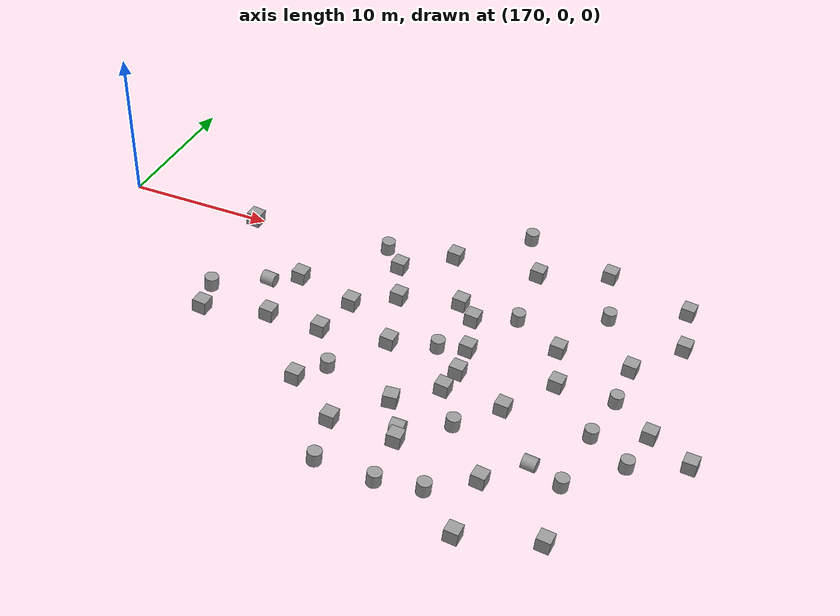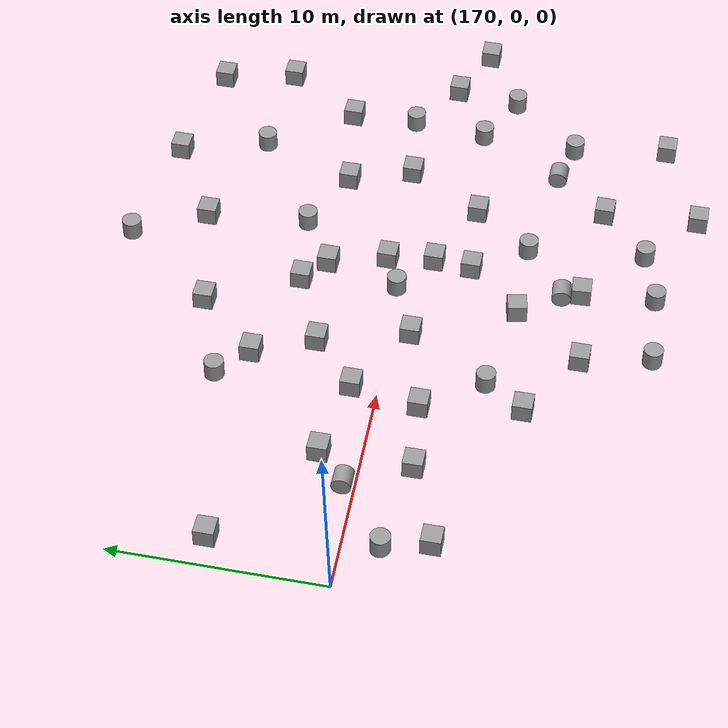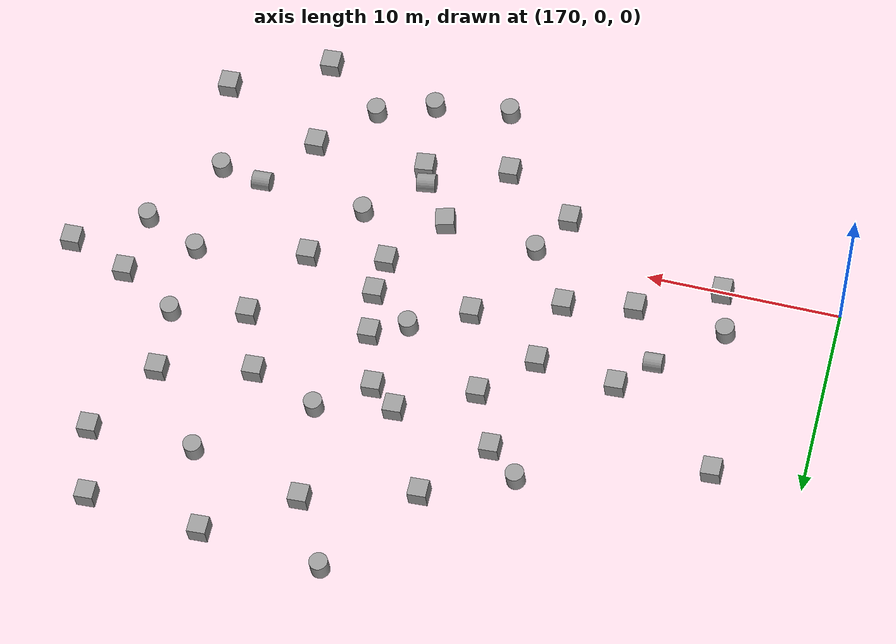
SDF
<sdf version="1.6">
 <world name="munkholmen">
  <physics name="default_physics" default="1" type="ode">
   <max_step_size>0.01</max_step_size>
   <real_time_factor>1</real_time_factor>
   <real_time_update_rate>100</real_time_update_rate>
   <ode>
    <solver>
     <type>quick</type>
     <iters>50</iters>
     <sor>1.2</sor>
     <use_dynamic_moi_rescaling>0</use_dynamic_moi_rescaling>
    </solver>
    <constraints>
     <cfm>0</cfm>
     <erp>0.2</erp>
     <contact_max_correcting_vel>100</contact_max_correcting_vel>
     <contact_surface_layer>0.001</contact_surface_layer>
    </constraints>
   </ode>
  </physics>
  <scene>
   <ambient>0.01 0.01 0.01 1</ambient>
   <sky><clouds><speed>12</speed></clouds></sky>
   <shadows>1</shadows>
   <background>0.7 0.7 0.7 1</background>
  </scene>
  <spherical_coordinates>
   <latitude_deg>63.452</latitude_deg>
   <longitude_deg>10.3845</longitude_deg>
   <surface_model>EARTH_WGS84</surface_model>
   <elevation>0</elevation>
   <heading_deg>0</heading_deg>
  </spherical_coordinates>
  <light name="sun_diffuse_1" type="directional">
   <pose>-200 -200 100 0 -0 0</pose>
   <diffuse>0.6 0.6 0.6 1</diffuse>
   <specular>0 0 0 1</specular>
   <direction>-0.3 -0.3 -1</direction>
  </light>
  <light name="sun_diffuse_2" type="directional">
   <pose>-100 50 200 0 -0 0</pose>
   <diffuse>0.6 0.6 0.6 1</diffuse>
   <specular>0 0 0 1</specular>
   <direction>-0.3 -0.3 -1</direction>
  </light>
  <light name="sun_diffuse_3" type="directional">
   <pose>-150 -130 50 0 -0 0</pose>
   <diffuse>0.6 0.6 0.6 1</diffuse>
   <specular>0.2 0.2 0.2 1</specular>
   <direction>0.5 0.5 -1</direction>
  </light>
  <plugin name="underwater_current_plugin" filename="libuuv_underwater_current_ros_plugin.so">
   <namespace>hydrodynamics</namespace>
   <constant_current>
    <topic>current_velocity</topic>
    <velocity><mean>0</mean><min>0</min><max>5</max><mu>0.0</mu><noiseAmp>0.0</noiseAmp></velocity>
    <horizontal_angle>
     <mean>0</mean>
     <min>-3.141592653589793238</min>
     <max>3.141592653589793238</max>
     <mu>0.0</mu>
     <noiseAmp>0.0</noiseAmp>
    </horizontal_angle>
    <vertical_angle>
     <mean>0</mean>
     <min>-3.141592653589793238</min>
     <max>3.141592653589793238</max>
     <mu>0.0</mu>
     <noiseAmp>0.0</noiseAmp>
    </vertical_angle>
   </constant_current>
  </plugin>
  <plugin name="sc_interface" filename="libuuv_sc_ros_interface_plugin.so"/>
  <gravity>0 0 -9.8</gravity>
  <magnetic_field>6e-06 2.3e-05 -4.2e-05</magnetic_field>
  <atmosphere type="adiabatic"/>
  <model name="unit_box_0_0">
   <pose>194.477 -0.07432 -7.94283 3.14135 1.45814 -3.14159</pose>
   <link name="link">
    <inertial>
     <mass>1</mass>
     <inertia>
      <ixx>0.166667</ixx>
      <ixy>0</ixy>
      <ixz>0</ixz>
      <iyy>0.166667</iyy>
      <iyz>0</iyz>
      <izz>0.166667</izz>
     </inertia>
    </inertial>
    <collision name="collision"><geometry><box><size>1 1 1</size></box></geometry></collision>
    <visual name="visual">
     <geometry><box><size>1 1 1</size></box></geometry>
     <material>
      <script><name>Gazebo/Grey</name><uri>file://media/materials/scripts/gazebo.material</uri></script>
     </material>
    </visual>
   </link>
  </model>
  <model name="unit_box_0_1">
   <pose>189.151 0.194555 -7.34023 0.000278 0.112659 0.002471</pose>
   <link name="link">
    <inertial>
     <mass>1</mass>
     <inertia>
      <ixx>0.166667</ixx>
      <ixy>0</ixy>
      <ixz>0</ixz>
      <iyy>0.166667</iyy>
      <iyz>0</iyz>
      <izz>0.166667</izz>
     </inertia>
    </inertial>
    <collision name="collision"><geometry><box><size>1 1 1</size></box></geometry></collision>
    <visual name="visual">
     <geometry><box><size>1 1 1</size></box></geometry>
     <material>
      <script><name>Gazebo/Grey</name><uri>file://media/materials/scripts/gazebo.material</uri></script>
     </material>
    </visual>
   </link>
  </model>
  <model name="unit_box_0_2">
   <pose>194.307 -2.07694 -7.92366 -3.13433 1.45814 -3.14159</pose>
   <link name="link">
    <inertial>
     <mass>1</mass>
     <inertia>
      <ixx>0.166667</ixx>
      <ixy>0</ixy>
      <ixz>0</ixz>
      <iyy>0.166667</iyy>
      <iyz>0</iyz>
      <izz>0.166667</izz>
     </inertia>
    </inertial>
    <collision name="collision"><geometry><box><size>1 1 1</size></box></geometry></collision>
    <visual name="visual">
     <geometry><box><size>1 1 1</size></box></geometry>
     <material>
      <script><name>Gazebo/Grey</name><uri>file://media/materials/scripts/gazebo.material</uri></script>
     </material>
    </visual>
   </link>
  </model>
  <model name="unit_box_0_3">
   <pose>191.824 6.49335 -7.64185 -1.4e-05 0.112886 -0.000149</pose>
   <link name="link">
    <inertial>
     <mass>1</mass>
     <inertia>
      <ixx>0.166667</ixx>
      <ixy>0</ixy>
      <ixz>0</ixz>
      <iyy>0.166667</iyy>
      <iyz>0</iyz>
      <izz>0.166667</izz>
     </inertia>
    </inertial>
    <collision name="collision"><geometry><box><size>1 1 1</size></box></geometry></collision>
    <visual name="visual">
     <geometry><box><size>1 1 1</size></box></geometry>
     <material>
      <script><name>Gazebo/Grey</name><uri>file://media/materials/scripts/gazebo.material</uri></script>
     </material>
    </visual>
   </link>
  </model>
  <model name="unit_box_0_4">
   <pose>193.238 5.37704 -7.80267 -3.14079 1.45814 -3.14159</pose>
   <link name="link">
    <inertial>
     <mass>1</mass>
     <inertia>
      <ixx>0.166667</ixx>
      <ixy>0</ixy>
      <ixz>0</ixz>
      <iyy>0.166667</iyy>
      <iyz>0</iyz>
      <izz>0.166667</izz>
     </inertia>
    </inertial>
    <collision name="collision"><geometry><box><size>1 1 1</size></box></geometry></collision>
    <visual name="visual">
     <geometry><box><size>1 1 1</size></box></geometry>
     <material>
      <script><name>Gazebo/Grey</name><uri>file://media/materials/scripts/gazebo.material</uri></script>
     </material>
    </visual>
   </link>
  </model>
  <model name="unit_box_0_5">
   <pose>194.159 2.35184 -7.90594 -3.1415 1.45814 -3.14159</pose>
   <link name="link">
    <inertial>
     <mass>1</mass>
     <inertia>
      <ixx>0.166667</ixx>
      <ixy>0</ixy>
      <ixz>0</ixz>
      <iyy>0.166667</iyy>
      <iyz>0</iyz>
      <izz>0.166667</izz>
     </inertia>
    </inertial>
    <collision name="collision"><geometry><box><size>1 1 1</size></box></geometry></collision>
    <visual name="visual">
     <geometry><box><size>1 1 1</size></box></geometry>
     <material>
      <script><name>Gazebo/Grey</name><uri>file://media/materials/scripts/gazebo.material</uri></script>
     </material>
    </visual>
   </link>
  </model>
  <model name="unit_box_0_6">
   <pose>184.497 -1.10628 -6.81368 -3.1404 1.45814 -3.14159</pose>
   <link name="link">
    <inertial>
     <mass>1</mass>
     <inertia>
      <ixx>0.166667</ixx>
      <ixy>0</ixy>
      <ixz>0</ixz>
      <iyy>0.166667</iyy>
      <iyz>0</iyz>
      <izz>0.166667</izz>
     </inertia>
    </inertial>
    <collision name="collision"><geometry><box><size>1 1 1</size></box></geometry></collision>
    <visual name="visual">
     <geometry><box><size>1 1 1</size></box></geometry>
     <material>
      <script><name>Gazebo/Grey</name><uri>file://media/materials/scripts/gazebo.material</uri></script>
     </material>
    </visual>
   </link>
  </model>
  <model name="unit_box_0_7">
   <pose>187.747 4.77362 -7.18053 -3.13958 1.45813 -3.14044</pose>
   <link name="link">
    <inertial>
     <mass>1</mass>
     <inertia>
      <ixx>0.166667</ixx>
      <ixy>0</ixy>
      <ixz>0</ixz>
      <iyy>0.166667</iyy>
      <iyz>0</iyz>
      <izz>0.166667</izz>
     </inertia>
    </inertial>
    <collision name="collision"><geometry><box><size>1 1 1</size></box></geometry></collision>
    <visual name="visual">
     <geometry><box><size>1 1 1</size></box></geometry>
     <material>
      <script><name>Gazebo/Grey</name><uri>file://media/materials/scripts/gazebo.material</uri></script>
     </material>
    </visual>
   </link>
  </model>
  <model name="unit_box_0_8">
   <pose>185.123 2.43028 -6.88456 0.000149 0.11266 0.001325</pose>
   <link name="link">
    <inertial>
     <mass>1</mass>
     <inertia>
      <ixx>0.166667</ixx>
      <ixy>0</ixy>
      <ixz>0</ixz>
      <iyy>0.166667</iyy>
      <iyz>0</iyz>
      <izz>0.166667</izz>
     </inertia>
    </inertial>
    <collision name="collision"><geometry><box><size>1 1 1</size></box></geometry></collision>
    <visual name="visual">
     <geometry><box><size>1 1 1</size></box></geometry>
     <material>
      <script><name>Gazebo/Grey</name><uri>file://media/materials/scripts/gazebo.material</uri></script>
     </material>
    </visual>
   </link>
  </model>
  <model name="unit_box_0_9">
   <pose>180.739 -1.56134 -6.3886 0.000254 0.112659 0.002263</pose>
   <link name="link">
    <inertial>
     <mass>1</mass>
     <inertia>
      <ixx>0.166667</ixx>
      <ixy>0</ixy>
      <ixz>0</ixz>
      <iyy>0.166667</iyy>
      <iyz>0</iyz>
      <izz>0.166667</izz>
     </inertia>
    </inertial>
    <collision name="collision"><geometry><box><size>1 1 1</size></box></geometry></collision>
    <visual name="visual">
     <geometry><box><size>1 1 1</size></box></geometry>
     <material>
      <script><name>Gazebo/Grey</name><uri>file://media/materials/scripts/gazebo.material</uri></script>
     </material>
    </visual>
   </link>
  </model>
  <model name="unit_box_0_10">
   <pose>180.777 3.11386 -6.39198 -0.000517 0.112947 -0.003217</pose>
   <link name="link">
    <inertial>
     <mass>1</mass>
     <inertia>
      <ixx>0.166667</ixx>
      <ixy>0</ixy>
      <ixz>0</ixz>
      <iyy>0.166667</iyy>
      <iyz>0</iyz>
      <izz>0.166667</izz>
     </inertia>
    </inertial>
    <collision name="collision"><geometry><box><size>1 1 1</size></box></geometry></collision>
    <visual name="visual">
     <geometry><box><size>1 1 1</size></box></geometry>
     <material>
      <script><name>Gazebo/Grey</name><uri>file://media/materials/scripts/gazebo.material</uri></script>
     </material>
    </visual>
   </link>
  </model>
  <model name="unit_cylinder_0">
   <pose>179.101 1.56253 -6.20231 2.75023 1.44886 2.7486</pose>
   <link name="link">
    <inertial>
     <mass>1</mass>
     <inertia><ixx>0.145833</ixx><ixy>0</ixy><ixz>0</ixz><iyy>0.145833</iyy><iyz>0</iyz><izz>0.125</izz></inertia>
    </inertial>
    <collision name="collision">
     <geometry><cylinder><radius>0.5</radius><length>1</length></cylinder></geometry>
    </collision>
    <visual name="visual">
     <geometry><cylinder><radius>0.5</radius><length>1</length></cylinder></geometry>
     <material>
      <script><name>Gazebo/Grey</name><uri>file://media/materials/scripts/gazebo.material</uri></script>
     </material>
    </visual>
   </link>
  </model>
  <model name="unit_cylinder_1">
   <pose>175.831 -0.910428 -5.83327 -0.004788 0.112638 -0.042622</pose>
   <link name="link">
    <inertial>
     <mass>1</mass>
     <inertia><ixx>0.145833</ixx><ixy>0</ixy><ixz>0</ixz><iyy>0.145833</iyy><iyz>0</iyz><izz>0.125</izz></inertia>
    </inertial>
    <collision name="collision">
     <geometry><cylinder><radius>0.5</radius><length>1</length></cylinder></geometry>
    </collision>
    <visual name="visual">
     <geometry><cylinder><radius>0.5</radius><length>1</length></cylinder></geometry>
     <material>
      <script><name>Gazebo/Grey</name><uri>file://media/materials/scripts/gazebo.material</uri></script>
     </material>
    </visual>
   </link>
  </model>
  <model name="unit_box_0_11">
   <pose>174.869 7.16549 -5.72445 0.000212 0.11266 0.001882</pose>
   <link name="link">
    <inertial>
     <mass>1</mass>
     <inertia>
      <ixx>0.166667</ixx>
      <ixy>0</ixy>
      <ixz>0</ixz>
      <iyy>0.166667</iyy>
      <iyz>0</iyz>
      <izz>0.166667</izz>
     </inertia>
    </inertial>
    <collision name="collision"><geometry><box><size>1 1 1</size></box></geometry></collision>
    <visual name="visual">
     <geometry><box><size>1 1 1</size></box></geometry>
     <material>
      <script><name>Gazebo/Grey</name><uri>file://media/materials/scripts/gazebo.material</uri></script>
     </material>
    </visual>
   </link>
  </model>
  <model name="unit_box_0_12">
   <pose>176.45 -3.23855 -5.90341 3.14073 1.45814 3.14044</pose>
   <link name="link">
    <inertial>
     <mass>1</mass>
     <inertia>
      <ixx>0.166667</ixx>
      <ixy>0</ixy>
      <ixz>0</ixz>
      <iyy>0.166667</iyy>
      <iyz>0</iyz>
      <izz>0.166667</izz>
     </inertia>
    </inertial>
    <collision name="collision"><geometry><box><size>1 1 1</size></box></geometry></collision>
    <visual name="visual">
     <geometry><box><size>1 1 1</size></box></geometry>
     <material>
      <script><name>Gazebo/Grey</name><uri>file://media/materials/scripts/gazebo.material</uri></script>
     </material>
    </visual>
   </link>
  </model>
  <model name="unit_box_0_13">
   <pose>211.235 -0.403109 -9.77641 -3.8e-05 0.066175 -0.00057</pose>
   <link name="link">
    <inertial>
     <mass>1</mass>
     <inertia>
      <ixx>0.166667</ixx>
      <ixy>0</ixy>
      <ixz>0</ixz>
      <iyy>0.166667</iyy>
      <iyz>0</iyz>
      <izz>0.166667</izz>
     </inertia>
    </inertial>
    <collision name="collision"><geometry><box><size>1 1 1</size></box></geometry></collision>
    <visual name="visual">
     <geometry><box><size>1 1 1</size></box></geometry>
     <material>
      <script><name>Gazebo/Grey</name><uri>file://media/materials/scripts/gazebo.material</uri></script>
     </material>
    </visual>
   </link>
  </model>
  <model name="unit_box_0_14">
   <pose>207.975 0.898243 -9.47004 -1.2e-05 0.11266 -0.00011</pose>
   <link name="link">
    <inertial>
     <mass>1</mass>
     <inertia>
      <ixx>0.166667</ixx>
      <ixy>0</ixy>
      <ixz>0</ixz>
      <iyy>0.166667</iyy>
      <iyz>0</iyz>
      <izz>0.166667</izz>
     </inertia>
    </inertial>
    <collision name="collision"><geometry><box><size>1 1 1</size></box></geometry></collision>
    <visual name="visual">
     <geometry><box><size>1 1 1</size></box></geometry>
     <material>
      <script><name>Gazebo/Grey</name><uri>file://media/materials/scripts/gazebo.material</uri></script>
     </material>
    </visual>
   </link>
  </model>
  <model name="unit_cylinder_2">
   <pose>204.543 -1.07557 -9.08079 -0.034316 0.107332 -0.308677</pose>
   <link name="link">
    <inertial>
     <mass>1</mass>
     <inertia><ixx>0.145833</ixx><ixy>0</ixy><ixz>0</ixz><iyy>0.145833</iyy><iyz>0</iyz><izz>0.125</izz></inertia>
    </inertial>
    <collision name="collision">
     <geometry><cylinder><radius>0.5</radius><length>1</length></cylinder></geometry>
    </collision>
    <visual name="visual">
     <geometry><cylinder><radius>0.5</radius><length>1</length></cylinder></geometry>
     <material>
      <script><name>Gazebo/Grey</name><uri>file://media/materials/scripts/gazebo.material</uri></script>
     </material>
    </visual>
   </link>
  </model>
  <model name="unit_box_0_15">
   <pose>204.726 6.37913 -9.10243 3.14132 1.45814 -3.14159</pose>
   <link name="link">
    <inertial>
     <mass>1</mass>
     <inertia>
      <ixx>0.166667</ixx>
      <ixy>0</ixy>
      <ixz>0</ixz>
      <iyy>0.166667</iyy>
      <iyz>0</iyz>
      <izz>0.166667</izz>
     </inertia>
    </inertial>
    <collision name="collision"><geometry><box><size>1 1 1</size></box></geometry></collision>
    <visual name="visual">
     <geometry><box><size>1 1 1</size></box></geometry>
     <material>
      <script><name>Gazebo/Grey</name><uri>file://media/materials/scripts/gazebo.material</uri></script>
     </material>
    </visual>
   </link>
  </model>
  <model name="unit_cylinder_3">
   <pose>204.911 2.86035 -9.12257 -0.006884 0.112437 -0.059871</pose>
   <link name="link">
    <inertial>
     <mass>1</mass>
     <inertia><ixx>0.145833</ixx><ixy>0</ixy><ixz>0</ixz><iyy>0.145833</iyy><iyz>0</iyz><izz>0.125</izz></inertia>
    </inertial>
    <collision name="collision">
     <geometry><cylinder><radius>0.5</radius><length>1</length></cylinder></geometry>
    </collision>
    <visual name="visual">
     <geometry><cylinder><radius>0.5</radius><length>1</length></cylinder></geometry>
     <material>
      <script><name>Gazebo/Grey</name><uri>file://media/materials/scripts/gazebo.material</uri></script>
     </material>
    </visual>
   </link>
  </model>
  <model name="unit_cylinder_4">
   <pose>202.024 -5.62377 -8.79578 -1.803 1.06041 -1.78439</pose>
   <link name="link">
    <inertial>
     <mass>1</mass>
     <inertia><ixx>0.145833</ixx><ixy>0</ixy><ixz>0</ixz><iyy>0.145833</iyy><iyz>0</iyz><izz>0.125</izz></inertia>
    </inertial>
    <collision name="collision">
     <geometry><cylinder><radius>0.5</radius><length>1</length></cylinder></geometry>
    </collision>
    <visual name="visual">
     <geometry><cylinder><radius>0.5</radius><length>1</length></cylinder></geometry>
     <material>
      <script><name>Gazebo/Grey</name><uri>file://media/materials/scripts/gazebo.material</uri></script>
     </material>
    </visual>
   </link>
  </model>
  <model name="unit_box_0">
   <pose>198.51 -1.73361 -8.39919 -3.14146 1.45814 3.14159</pose>
   <link name="link">
    <inertial>
     <mass>1</mass>
     <inertia>
      <ixx>0.166667</ixx>
      <ixy>0</ixy>
      <ixz>0</ixz>
      <iyy>0.166667</iyy>
      <iyz>0</iyz>
      <izz>0.166667</izz>
     </inertia>
    </inertial>
    <collision name="collision"><geometry><box><size>1 1 1</size></box></geometry></collision>
    <visual name="visual">
     <geometry><box><size>1 1 1</size></box></geometry>
     <material>
      <script><name>Gazebo/Grey</name><uri>file://media/materials/scripts/gazebo.material</uri></script>
     </material>
    </visual>
   </link>
  </model>
  <model name="unit_box_1">
   <pose>199.725 -8.46076 -8.53664 -3.12141 1.45814 -3.14159</pose>
   <link name="link">
    <inertial>
     <mass>1</mass>
     <inertia>
      <ixx>0.166667</ixx>
      <ixy>0</ixy>
      <ixz>0</ixz>
      <iyy>0.166667</iyy>
      <iyz>0</iyz>
      <izz>0.166667</izz>
     </inertia>
    </inertial>
    <collision name="collision"><geometry><box><size>1 1 1</size></box></geometry></collision>
    <visual name="visual">
     <geometry><box><size>1 1 1</size></box></geometry>
     <material>
      <script><name>Gazebo/Grey</name><uri>file://media/materials/scripts/gazebo.material</uri></script>
     </material>
    </visual>
   </link>
  </model>
  <model name="unit_cylinder_5">
   <pose>196.235 -4.81288 -8.14105 -0.032687 0.107783 -0.292116</pose>
   <link name="link">
    <inertial>
     <mass>1</mass>
     <inertia><ixx>0.145833</ixx><ixy>0</ixy><ixz>0</ixz><iyy>0.145833</iyy><iyz>0</iyz><izz>0.125</izz></inertia>
    </inertial>
    <collision name="collision">
     <geometry><cylinder><radius>0.5</radius><length>1</length></cylinder></geometry>
    </collision>
    <visual name="visual">
     <geometry><cylinder><radius>0.5</radius><length>1</length></cylinder></geometry>
     <material>
      <script><name>Gazebo/Grey</name><uri>file://media/materials/scripts/gazebo.material</uri></script>
     </material>
    </visual>
   </link>
  </model>
  <model name="unit_box_2">
   <pose>193.574 -7.98965 -7.83979 0.006932 0.112447 0.061699</pose>
   <link name="link">
    <inertial>
     <mass>1</mass>
     <inertia>
      <ixx>0.166667</ixx>
      <ixy>0</ixy>
      <ixz>0</ixz>
      <iyy>0.166667</iyy>
      <iyz>0</iyz>
      <izz>0.166667</izz>
     </inertia>
    </inertial>
    <collision name="collision"><geometry><box><size>1 1 1</size></box></geometry></collision>
    <visual name="visual">
     <geometry><box><size>1 1 1</size></box></geometry>
     <material>
      <script><name>Gazebo/Grey</name><uri>file://media/materials/scripts/gazebo.material</uri></script>
     </material>
    </visual>
   </link>
  </model>
  <model name="unit_box_3">
   <pose>199.636 5.57564 -8.5265 -2.1e-05 0.11266 -0.000182</pose>
   <link name="link">
    <inertial>
     <mass>1</mass>
     <inertia>
      <ixx>0.166667</ixx>
      <ixy>0</ixy>
      <ixz>0</ixz>
      <iyy>0.166667</iyy>
      <iyz>0</iyz>
      <izz>0.166667</izz>
     </inertia>
    </inertial>
    <collision name="collision"><geometry><box><size>1 1 1</size></box></geometry></collision>
    <visual name="visual">
     <geometry><box><size>1 1 1</size></box></geometry>
     <material>
      <script><name>Gazebo/Grey</name><uri>file://media/materials/scripts/gazebo.material</uri></script>
     </material>
    </visual>
   </link>
  </model>
  <model name="unit_cylinder_6">
   <pose>196.002 7.09552 -8.11433 -0.015505 0.111844 -0.135685</pose>
   <link name="link">
    <inertial>
     <mass>1</mass>
     <inertia><ixx>0.145833</ixx><ixy>0</ixy><ixz>0</ixz><iyy>0.145833</iyy><iyz>0</iyz><izz>0.125</izz></inertia>
    </inertial>
    <collision name="collision">
     <geometry><cylinder><radius>0.5</radius><length>1</length></cylinder></geometry>
    </collision>
    <visual name="visual">
     <geometry><cylinder><radius>0.5</radius><length>1</length></cylinder></geometry>
     <material>
      <script><name>Gazebo/Grey</name><uri>file://media/materials/scripts/gazebo.material</uri></script>
     </material>
    </visual>
   </link>
  </model>
  <model name="unit_box_4">
   <pose>200.813 2.26767 -8.6598 1.3e-05 0.112759 -0.000206</pose>
   <link name="link">
    <inertial>
     <mass>1</mass>
     <inertia>
      <ixx>0.166667</ixx>
      <ixy>0</ixy>
      <ixz>0</ixz>
      <iyy>0.166667</iyy>
      <iyz>0</iyz>
      <izz>0.166667</izz>
     </inertia>
    </inertial>
    <collision name="collision"><geometry><box><size>1 1 1</size></box></geometry></collision>
    <visual name="visual">
     <geometry><box><size>1 1 1</size></box></geometry>
     <material>
      <script><name>Gazebo/Grey</name><uri>file://media/materials/scripts/gazebo.material</uri></script>
     </material>
    </visual>
   </link>
  </model>
  <model name="unit_cylinder_7">
   <pose>193.276 -6.99998 -7.80611 2.09287 1.34422 2.16645</pose>
   <link name="link">
    <inertial>
     <mass>1</mass>
     <inertia><ixx>0.145833</ixx><ixy>0</ixy><ixz>0</ixz><iyy>0.145833</iyy><iyz>0</iyz><izz>0.125</izz></inertia>
    </inertial>
    <collision name="collision">
     <geometry><cylinder><radius>0.5</radius><length>1</length></cylinder></geometry>
    </collision>
    <visual name="visual">
     <geometry><cylinder><radius>0.5</radius><length>1</length></cylinder></geometry>
     <material>
      <script><name>Gazebo/Grey</name><uri>file://media/materials/scripts/gazebo.material</uri></script>
     </material>
    </visual>
   </link>
  </model>
  <model name="unit_box_5">
   <pose>189.047 -8.49443 -7.32865 0.000286 0.112758 0.002219</pose>
   <link name="link">
    <inertial>
     <mass>1</mass>
     <inertia>
      <ixx>0.166667</ixx>
      <ixy>0</ixy>
      <ixz>0</ixz>
      <iyy>0.166667</iyy>
      <iyz>0</iyz>
      <izz>0.166667</izz>
     </inertia>
    </inertial>
    <collision name="collision"><geometry><box><size>1 1 1</size></box></geometry></collision>
    <visual name="visual">
     <geometry><box><size>1 1 1</size></box></geometry>
     <material>
      <script><name>Gazebo/Grey</name><uri>file://media/materials/scripts/gazebo.material</uri></script>
     </material>
    </visual>
   </link>
  </model>
  <model name="unit_box_6">
   <pose>191.739 -4.86956 -7.63308 0.022895 0.110318 0.205071</pose>
   <link name="link">
    <inertial>
     <mass>1</mass>
     <inertia>
      <ixx>0.166667</ixx>
      <ixy>0</ixy>
      <ixz>0</ixz>
      <iyy>0.166667</iyy>
      <iyz>0</iyz>
      <izz>0.166667</izz>
     </inertia>
    </inertial>
    <collision name="collision"><geometry><box><size>1 1 1</size></box></geometry></collision>
    <visual name="visual">
     <geometry><box><size>1 1 1</size></box></geometry>
     <material>
      <script><name>Gazebo/Grey</name><uri>file://media/materials/scripts/gazebo.material</uri></script>
     </material>
    </visual>
   </link>
  </model>
  <model name="unit_cylinder_8">
   <pose>186.648 -4.08782 -7.0565 0.003072 0.112619 0.022915</pose>
   <link name="link">
    <inertial>
     <mass>1</mass>
     <inertia><ixx>0.145833</ixx><ixy>0</ixy><ixz>0</ixz><iyy>0.145833</iyy><iyz>0</iyz><izz>0.125</izz></inertia>
    </inertial>
    <collision name="collision">
     <geometry><cylinder><radius>0.5</radius><length>1</length></cylinder></geometry>
    </collision>
    <visual name="visual">
     <geometry><cylinder><radius>0.5</radius><length>1</length></cylinder></geometry>
     <material>
      <script><name>Gazebo/Grey</name><uri>file://media/materials/scripts/gazebo.material</uri></script>
     </material>
    </visual>
   </link>
  </model>
  <model name="unit_cylinder_9">
   <pose>196.972 -10.9425 -8.22432 -0.004893 0.112567 -0.042307</pose>
   <link name="link">
    <inertial>
     <mass>1</mass>
     <inertia><ixx>0.145833</ixx><ixy>0</ixy><ixz>0</ixz><iyy>0.145833</iyy><iyz>0</iyz><izz>0.125</izz></inertia>
    </inertial>
    <collision name="collision">
     <geometry><cylinder><radius>0.5</radius><length>1</length></cylinder></geometry>
    </collision>
    <visual name="visual">
     <geometry><cylinder><radius>0.5</radius><length>1</length></cylinder></geometry>
     <material>
      <script><name>Gazebo/Grey</name><uri>file://media/materials/scripts/gazebo.material</uri></script>
     </material>
    </visual>
   </link>
  </model>
  <model name="unit_cylinder_10">
   <pose>204.417 -6.20066 -9.06666 -0.0309 0.108352 -0.276773</pose>
   <link name="link">
    <inertial>
     <mass>1</mass>
     <inertia><ixx>0.145833</ixx><ixy>0</ixy><ixz>0</ixz><iyy>0.145833</iyy><iyz>0</iyz><izz>0.125</izz></inertia>
    </inertial>
    <collision name="collision">
     <geometry><cylinder><radius>0.5</radius><length>1</length></cylinder></geometry>
    </collision>
    <visual name="visual">
     <geometry><cylinder><radius>0.5</radius><length>1</length></cylinder></geometry>
     <material>
      <script><name>Gazebo/Grey</name><uri>file://media/materials/scripts/gazebo.material</uri></script>
     </material>
    </visual>
   </link>
  </model>
  <model name="unit_cylinder_11">
   <pose>207.553 -2.49853 -9.42137 -0.01092 0.112141 -0.096113</pose>
   <link name="link">
    <inertial>
     <mass>1</mass>
     <inertia><ixx>0.145833</ixx><ixy>0</ixy><ixz>0</ixz><iyy>0.145833</iyy><iyz>0</iyz><izz>0.125</izz></inertia>
    </inertial>
    <collision name="collision">
     <geometry><cylinder><radius>0.5</radius><length>1</length></cylinder></geometry>
    </collision>
    <visual name="visual">
     <geometry><cylinder><radius>0.5</radius><length>1</length></cylinder></geometry>
     <material>
      <script><name>Gazebo/Grey</name><uri>file://media/materials/scripts/gazebo.material</uri></script>
     </material>
    </visual>
   </link>
  </model>
  <model name="unit_cylinder_12">
   <pose>201.602 10.6513 -8.74819 -0.010672 0.112175 -0.094005</pose>
   <link name="link">
    <inertial>
     <mass>1</mass>
     <inertia><ixx>0.145833</ixx><ixy>0</ixy><ixz>0</ixz><iyy>0.145833</iyy><iyz>0</iyz><izz>0.125</izz></inertia>
    </inertial>
    <collision name="collision">
     <geometry><cylinder><radius>0.5</radius><length>1</length></cylinder></geometry>
    </collision>
    <visual name="visual">
     <geometry><cylinder><radius>0.5</radius><length>1</length></cylinder></geometry>
     <material>
      <script><name>Gazebo/Grey</name><uri>file://media/materials/scripts/gazebo.material</uri></script>
     </material>
    </visual>
   </link>
  </model>
  <model name="unit_cylinder_13">
   <pose>192.252 1.52913 -7.69035 -0.005 0.112554 -0.043322</pose>
   <link name="link">
    <inertial>
     <mass>1</mass>
     <inertia><ixx>0.145833</ixx><ixy>0</ixy><ixz>0</ixz><iyy>0.145833</iyy><iyz>0</iyz><izz>0.125</izz></inertia>
    </inertial>
    <collision name="collision">
     <geometry><cylinder><radius>0.5</radius><length>1</length></cylinder></geometry>
    </collision>
    <visual name="visual">
     <geometry><cylinder><radius>0.5</radius><length>1</length></cylinder></geometry>
     <material>
      <script><name>Gazebo/Grey</name><uri>file://media/materials/scripts/gazebo.material</uri></script>
     </material>
    </visual>
   </link>
  </model>
  <model name="unit_box_7">
   <pose>189.392 11.0606 -7.36757 3.14007 1.45814 -3.14159</pose>
   <link name="link">
    <inertial>
     <mass>1</mass>
     <inertia>
      <ixx>0.166667</ixx>
      <ixy>0</ixy>
      <ixz>0</ixz>
      <iyy>0.166667</iyy>
      <iyz>0</iyz>
      <izz>0.166667</izz>
     </inertia>
    </inertial>
    <collision name="collision"><geometry><box><size>1 1 1</size></box></geometry></collision>
    <visual name="visual">
     <geometry><box><size>1 1 1</size></box></geometry>
     <material>
      <script><name>Gazebo/Grey</name><uri>file://media/materials/scripts/gazebo.material</uri></script>
     </material>
    </visual>
   </link>
  </model>
  <model name="unit_box_8">
   <pose>195.428 12.4236 -8.05046 -0.000186 0.11266 -0.001655</pose>
   <link name="link">
    <inertial>
     <mass>1</mass>
     <inertia>
      <ixx>0.166667</ixx>
      <ixy>0</ixy>
      <ixz>0</ixz>
      <iyy>0.166667</iyy>
      <iyz>0</iyz>
      <izz>0.166667</izz>
     </inertia>
    </inertial>
    <collision name="collision"><geometry><box><size>1 1 1</size></box></geometry></collision>
    <visual name="visual">
     <geometry><box><size>1 1 1</size></box></geometry>
     <material>
      <script><name>Gazebo/Grey</name><uri>file://media/materials/scripts/gazebo.material</uri></script>
     </material>
    </visual>
   </link>
  </model>
  <model name="unit_box_9">
   <pose>185.262 -6.17436 -6.90033 -3.14019 1.45814 3.14159</pose>
   <link name="link">
    <inertial>
     <mass>1</mass>
     <inertia>
      <ixx>0.166667</ixx>
      <ixy>0</ixy>
      <ixz>0</ixz>
      <iyy>0.166667</iyy>
      <iyz>0</iyz>
      <izz>0.166667</izz>
     </inertia>
    </inertial>
    <collision name="collision"><geometry><box><size>1 1 1</size></box></geometry></collision>
    <visual name="visual">
     <geometry><box><size>1 1 1</size></box></geometry>
     <material>
      <script><name>Gazebo/Grey</name><uri>file://media/materials/scripts/gazebo.material</uri></script>
     </material>
    </visual>
   </link>
  </model>
  <model name="unit_box_10">
   <pose>186.36 7.85336 -7.02363 -3.14136 1.45814 -3.14159</pose>
   <link name="link">
    <inertial>
     <mass>1</mass>
     <inertia>
      <ixx>0.166667</ixx>
      <ixy>0</ixy>
      <ixz>0</ixz>
      <iyy>0.166667</iyy>
      <iyz>0</iyz>
      <izz>0.166667</izz>
     </inertia>
    </inertial>
    <collision name="collision"><geometry><box><size>1 1 1</size></box></geometry></collision>
    <visual name="visual">
     <geometry><box><size>1 1 1</size></box></geometry>
     <material>
      <script><name>Gazebo/Grey</name><uri>file://media/materials/scripts/gazebo.material</uri></script>
     </material>
    </visual>
   </link>
  </model>
  <model name="unit_box_11">
   <pose>207.355 10.3897 -9.39899 0.000197 0.112561 0.002077</pose>
   <link name="link">
    <inertial>
     <mass>1</mass>
     <inertia>
      <ixx>0.166667</ixx>
      <ixy>0</ixy>
      <ixz>0</ixz>
      <iyy>0.166667</iyy>
      <iyz>0</iyz>
      <izz>0.166667</izz>
     </inertia>
    </inertial>
    <collision name="collision"><geometry><box><size>1 1 1</size></box></geometry></collision>
    <visual name="visual">
     <geometry><box><size>1 1 1</size></box></geometry>
     <material>
      <script><name>Gazebo/Grey</name><uri>file://media/materials/scripts/gazebo.material</uri></script>
     </material>
    </visual>
   </link>
  </model>
  <model name="unit_cylinder_14">
   <pose>193.449 16.1002 -7.82588 0.001438 0.112614 0.00856</pose>
   <link name="link">
    <inertial>
     <mass>1</mass>
     <inertia><ixx>0.145833</ixx><ixy>0</ixy><ixz>0</ixz><iyy>0.145833</iyy><iyz>0</iyz><izz>0.125</izz></inertia>
    </inertial>
    <collision name="collision">
     <geometry><cylinder><radius>0.5</radius><length>1</length></cylinder></geometry>
    </collision>
    <visual name="visual">
     <geometry><cylinder><radius>0.5</radius><length>1</length></cylinder></geometry>
     <material>
      <script><name>Gazebo/Grey</name><uri>file://media/materials/scripts/gazebo.material</uri></script>
     </material>
    </visual>
   </link>
  </model>
  <model name="unit_box_12">
   <pose>200.101 15.139 -8.57828 -0.000827 0.112847 -0.007399</pose>
   <link name="link">
    <inertial>
     <mass>1</mass>
     <inertia>
      <ixx>0.166667</ixx>
      <ixy>0</ixy>
      <ixz>0</ixz>
      <iyy>0.166667</iyy>
      <iyz>0</iyz>
      <izz>0.166667</izz>
     </inertia>
    </inertial>
    <collision name="collision"><geometry><box><size>1 1 1</size></box></geometry></collision>
    <visual name="visual">
     <geometry><box><size>1 1 1</size></box></geometry>
     <material>
      <script><name>Gazebo/Grey</name><uri>file://media/materials/scripts/gazebo.material</uri></script>
     </material>
    </visual>
   </link>
  </model>
  <model name="unit_box_13">
   <pose>206.43 14.2367 -9.29435 0 0.11266 1e-06</pose>
   <link name="link">
    <inertial>
     <mass>1</mass>
     <inertia>
      <ixx>0.166667</ixx>
      <ixy>0</ixy>
      <ixz>0</ixz>
      <iyy>0.166667</iyy>
      <iyz>0</iyz>
      <izz>0.166667</izz>
     </inertia>
    </inertial>
    <collision name="collision"><geometry><box><size>1 1 1</size></box></geometry></collision>
    <visual name="visual">
     <geometry><box><size>1 1 1</size></box></geometry>
     <material>
      <script><name>Gazebo/Grey</name><uri>file://media/materials/scripts/gazebo.material</uri></script>
     </material>
    </visual>
   </link>
  </model>
  <model name="unit_cylinder_15">
   <pose>184.709 9.34018 -6.83661 0.000342 0.112255 0.005795</pose>
   <link name="link">
    <inertial>
     <mass>1</mass>
     <inertia><ixx>0.145833</ixx><ixy>0</ixy><ixz>0</ixz><iyy>0.145833</iyy><iyz>0</iyz><izz>0.125</izz></inertia>
    </inertial>
    <collision name="collision">
     <geometry><cylinder><radius>0.5</radius><length>1</length></cylinder></geometry>
    </collision>
    <visual name="visual">
     <geometry><cylinder><radius>0.5</radius><length>1</length></cylinder></geometry>
     <material>
      <script><name>Gazebo/Grey</name><uri>file://media/materials/scripts/gazebo.material</uri></script>
     </material>
    </visual>
   </link>
  </model>
  <model name="unit_cylinder_16">
   <pose>193.927 -11.8191 -7.87984 -0.011195 0.112133 -0.098189</pose>
   <link name="link">
    <inertial>
     <mass>1</mass>
     <inertia><ixx>0.145833</ixx><ixy>0</ixy><ixz>0</ixz><iyy>0.145833</iyy><iyz>0</iyz><izz>0.125</izz></inertia>
    </inertial>
    <collision name="collision">
     <geometry><cylinder><radius>0.5</radius><length>1</length></cylinder></geometry>
    </collision>
    <visual name="visual">
     <geometry><cylinder><radius>0.5</radius><length>1</length></cylinder></geometry>
     <material>
      <script><name>Gazebo/Grey</name><uri>file://media/materials/scripts/gazebo.material</uri></script>
     </material>
    </visual>
   </link>
  </model>
  <model name="unit_box_14">
   <pose>205.294 -11.2627 -9.16575 -8e-06 0.11266 -7.3e-05</pose>
   <link name="link">
    <inertial>
     <mass>1</mass>
     <inertia>
      <ixx>0.166667</ixx>
      <ixy>0</ixy>
      <ixz>0</ixz>
      <iyy>0.166667</iyy>
      <iyz>0</iyz>
      <izz>0.166667</izz>
     </inertia>
    </inertial>
    <collision name="collision"><geometry><box><size>1 1 1</size></box></geometry></collision>
    <visual name="visual">
     <geometry><box><size>1 1 1</size></box></geometry>
     <material>
      <script><name>Gazebo/Grey</name><uri>file://media/materials/scripts/gazebo.material</uri></script>
     </material>
    </visual>
   </link>
  </model>
  <model name="unit_box_15">
   <pose>200.106 -13.4668 -8.57978 0.000238 0.112474 0.00213</pose>
   <link name="link">
    <inertial>
     <mass>1</mass>
     <inertia>
      <ixx>0.166667</ixx>
      <ixy>0</ixy>
      <ixz>0</ixz>
      <iyy>0.166667</iyy>
      <iyz>0</iyz>
      <izz>0.166667</izz>
     </inertia>
    </inertial>
    <collision name="collision"><geometry><box><size>1 1 1</size></box></geometry></collision>
    <visual name="visual">
     <geometry><box><size>1 1 1</size></box></geometry>
     <material>
      <script><name>Gazebo/Grey</name><uri>file://media/materials/scripts/gazebo.material</uri></script>
     </material>
    </visual>
   </link>
  </model>
  <model name="unit_cylinder_17">
   <pose>189.86 -12.1084 -7.41979 -0.004611 0.112597 -0.045058</pose>
   <link name="link">
    <inertial>
     <mass>1</mass>
     <inertia><ixx>0.145833</ixx><ixy>0</ixy><ixz>0</ixz><iyy>0.145833</iyy><iyz>0</iyz><izz>0.125</izz></inertia>
    </inertial>
    <collision name="collision">
     <geometry><cylinder><radius>0.5</radius><length>1</length></cylinder></geometry>
    </collision>
    <visual name="visual">
     <geometry><cylinder><radius>0.5</radius><length>1</length></cylinder></geometry>
     <material>
      <script><name>Gazebo/Grey</name><uri>file://media/materials/scripts/gazebo.material</uri></script>
     </material>
    </visual>
   </link>
  </model>
 </world>
</sdf>
